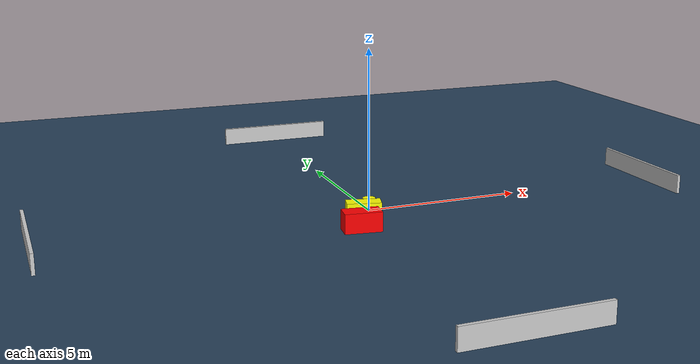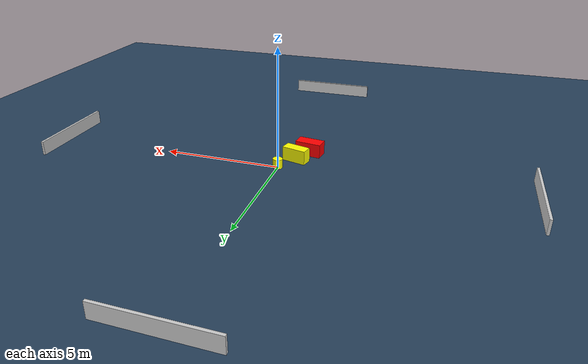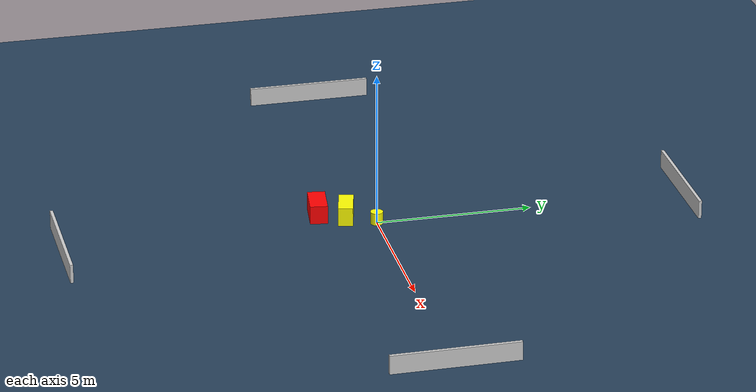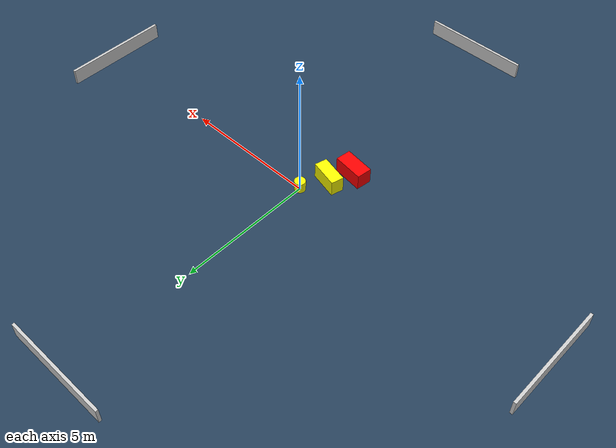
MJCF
<?xml version="1.0" ?>
<mujoco model="generated_environment">
  <option timestep="0.01" integrator="RK4" cone="elliptic"/>
  <default>
    <geom density="1"/>
  </default>
  <asset>
    <texture builtin="gradient" height="3072" name="skybox" rgb1="0.3 0.5 0.7" rgb2="0 0 0" type="skybox" width="512"/>
    <texture builtin="checker" height="300" name="groundplane" rgb1="0.2 0.3 0.4" rgb2="0.1 0.2 0.3" type="2d" width="300"/>
    <material name="groundplane" reflectance="0.2" texrepeat="5 5" texture="groundplane"/>
  </asset>
  <worldbody>
    <light dir="0 0 -1" directional="true" pos="0 0 1.5"/>
    <geom condim="3" friction="0.5 0.005 0.001" material="groundplane" name="floor" pos="0 0 0" size="0 0 0.05" type="plane"/>
    <body name="walls">
      <geom name="wall_1" condim="4" pos="-10.0 0.0 0.3" rgba="0.800000011920929 0.800000011920929 0.800000011920929 1.0" size="0.05 2.0 0.3" type="box"/>
      <geom name="wall_2" condim="4" pos="10.0 0.0 0.3" rgba="0.800000011920929 0.800000011920929 0.800000011920929 1.0" size="0.05 2.0 0.3" type="box"/>
      <geom name="wall_3" condim="4" pos="0.0 -10.0 0.3" rgba="0.800000011920929 0.800000011920929 0.800000011920929 1.0" size="2.0 0.05 0.3" type="box"/>
      <geom name="wall_4" condim="4" pos="0.0 10.0 0.3" rgba="0.800000011920929 0.800000011920929 0.800000011920929 1.0" size="2.0 0.05 0.3" type="box"/>
    </body>
    <body name="robot">
      <joint name="joint_x" type="slide" pos="0 0 0" axis="1 0 0"/>
      <joint name="joint_y" type="slide" pos="0 0 0" axis="0 1 0"/>
      <geom name="robot" type="cylinder" pos="0.0 0.0 0.2" size="0.2 0.2 0.0" mass="5.0" friction="1.0 0.005 0.0001" condim="4" rgba="1.0 1.0 0.0 1.0"/>
    </body>
    <body name="obstacle_1_movable">
      <geom name="obstacle_1_movable" condim="4" pos="-0.5273722596872883 -0.8767149521173584 0.3" euler="0 0 255.68836323852503" friction="0.0 0.005 0.001" rgba="1.0 1.0 0.0 1.0" size="0.2333607938746419 0.5216092621084732 0.3" type="box" mass="0.1"/>
      <joint type="free"/>
    </body>
    <body name="obstacle_2_static">
      <geom name="obstacle_2_static" condim="4" pos="-0.9100273892269456 -1.7065255099769625 0.3" euler="0 0 352.348277530487" friction="0.0 0.005 0.001" rgba="1.0 0.0 0.0 1.0" size="0.5595736324735588 0.2814701244829057 0.3" type="box"/>
    </body>
  </worldbody>
  <actuator>
    <motor name="actuator_x" joint="joint_x" gear="1" ctrlrange="-1 1"/>
    <motor name="actuator_y" joint="joint_y" gear="1" ctrlrange="-1 1"/>
  </actuator>
</mujoco>
